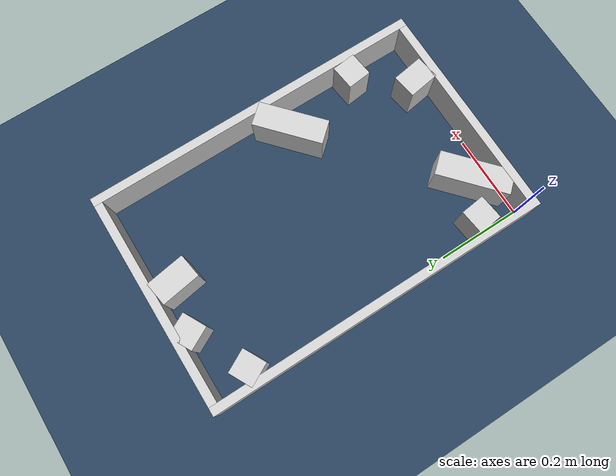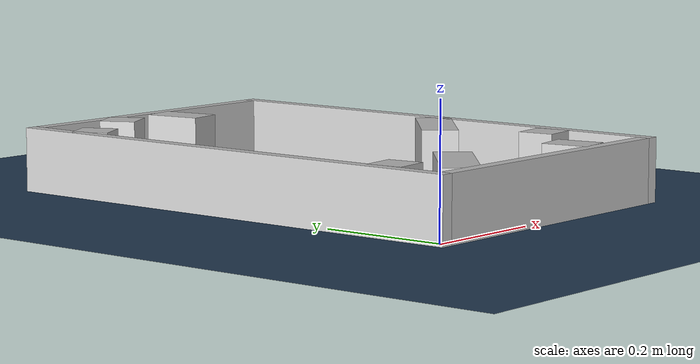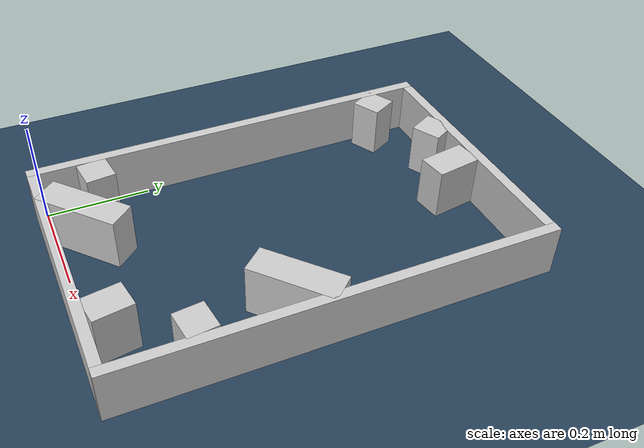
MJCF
<?xml version="1.0" ?>
<mujoco model="generated_real_template">
  <compiler angle="degree"/>
  <option timestep="0.002" integrator="implicitfast" iterations="100" cone="elliptic"/>
  <default>
    <geom density="1"/>
  </default>
  <asset>
    <texture builtin="gradient" height="3072" rgb1="0.3 0.5 0.7" rgb2="0 0 0" type="skybox" width="512"/>
    <texture builtin="checker" height="300" mark="edge" markrgb="0.8 0.8 0.8" name="groundplane" rgb1="0.2 0.3 0.4" rgb2="0.1 0.2 0.3" type="2d" width="300"/>
    <material name="groundplane" reflectance="0.2" texrepeat="5 5" texture="groundplane" texuniform="true"/>
  </asset>
  <worldbody>
    <light dir="0 0 -1" directional="true" pos="0 0 1.5"/>
    <geom name="floor" type="plane" condim="4" friction="0.5 0.005 0.001" material="groundplane" size="0 0 0.05"/>
    <body name="walls">
      <geom name="wall_boundary_left" type="box" condim="4" friction="1.0 0.005 0.0001" rgba="0.8 0.8 0.8 1" pos="-0.010000 0.387500 0.050000" euler="0 0 0.000000" size="0.010000 0.407500 0.050000"/>
      <geom name="wall_boundary_right" type="box" condim="4" friction="1.0 0.005 0.0001" rgba="0.8 0.8 0.8 1" pos="0.500000 0.387500 0.050000" euler="0 0 0.000000" size="0.010000 0.407500 0.050000"/>
      <geom name="wall_boundary_bottom" type="box" condim="4" friction="1.0 0.005 0.0001" rgba="0.8 0.8 0.8 1" pos="0.245000 -0.010000 0.050000" euler="0 0 0.000000" size="0.245000 0.010000 0.050000"/>
      <geom name="wall_boundary_top" type="box" condim="4" friction="1.0 0.005 0.0001" rgba="0.8 0.8 0.8 1" pos="0.245000 0.785000 0.050000" euler="0 0 0.000000" size="0.245000 0.010000 0.050000"/>
      <geom name="wall_inner_1_1" type="box" condim="4" friction="1.0 0.005 0.0001" rgba="0.8 0.8 0.8 1" pos="0.113111 0.057197 0.050000" euler="0 0 41.445526" size="0.084352 0.028500 0.050000"/>
      <geom name="wall_inner_1_2" type="box" condim="4" friction="1.0 0.005 0.0001" rgba="0.8 0.8 0.8 1" pos="0.428476 0.335675 0.050000" euler="0 0 41.445526" size="0.082077 0.028500 0.050000"/>
      <geom name="wall_inner_2_1" type="box" condim="4" friction="1.0 0.005 0.0001" rgba="0.8 0.8 0.8 1" pos="0.261745 0.729179 0.050000" euler="0 0 -81.108364" size="0.046379 0.028500 0.050000"/>
      <geom name="wall_inner_2_2" type="box" condim="4" friction="1.0 0.005 0.0001" rgba="0.8 0.8 0.8 1" pos="0.370091 0.036634 0.050000" euler="0 0 -81.108364" size="0.037079 0.028500 0.050000"/>
      <geom name="wall_inner_3_1" type="box" condim="4" friction="1.0 0.005 0.0001" rgba="0.8 0.8 0.8 1" pos="0.153012 0.756312 0.050000" euler="0 0 -152.349242" size="0.028965 0.028500 0.050000"/>
      <geom name="wall_inner_3_2" type="box" condim="4" friction="1.0 0.005 0.0001" rgba="0.8 0.8 0.8 1" pos="0.025369 0.689438 0.050000" euler="0 0 -152.349242" size="0.028640 0.028500 0.050000"/>
      <geom name="wall_inner_4_1" type="box" condim="4" friction="1.0 0.005 0.0001" rgba="0.8 0.8 0.8 1" pos="0.028887 0.102085 0.050000" euler="0 0 6.507522" size="0.029074 0.028500 0.050000"/>
      <geom name="wall_inner_4_2" type="box" condim="4" friction="1.0 0.005 0.0001" rgba="0.8 0.8 0.8 1" pos="0.460865 0.151360 0.050000" euler="0 0 6.507522" size="0.029324 0.028500 0.050000"/>
    </body>
  </worldbody>
</mujoco>
